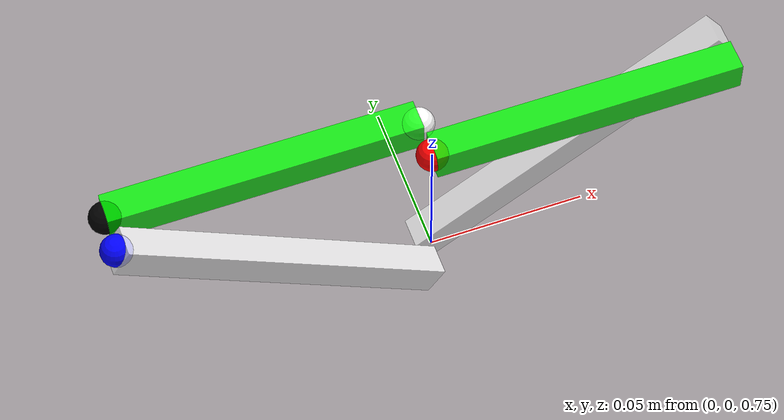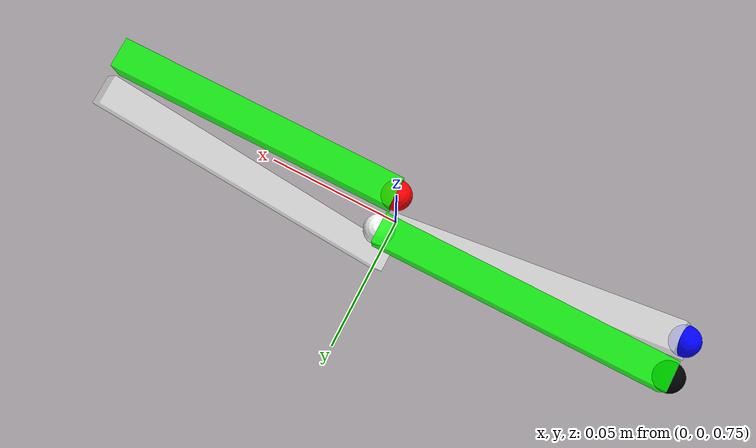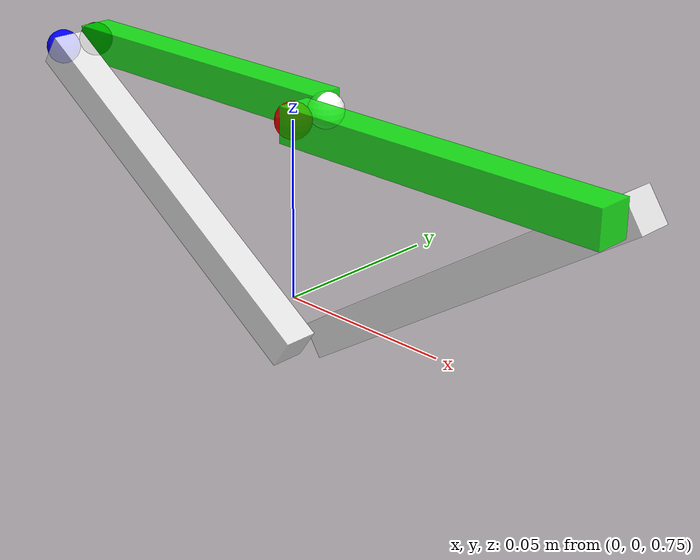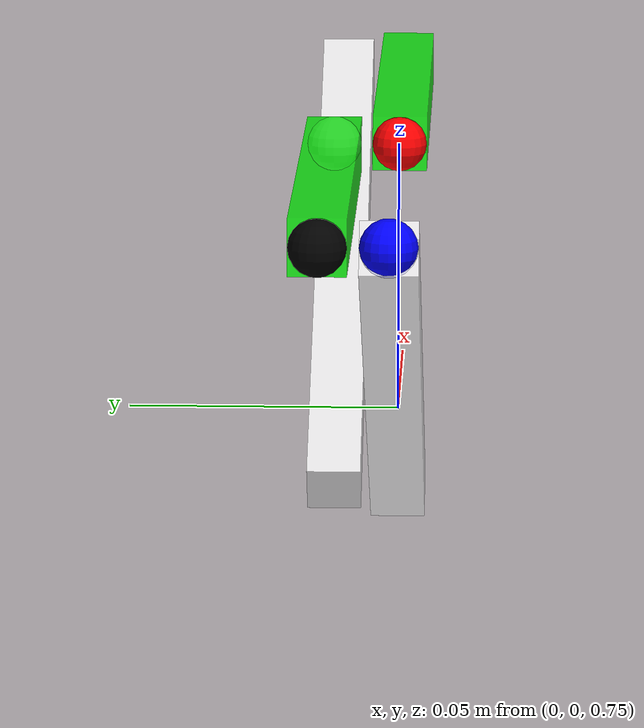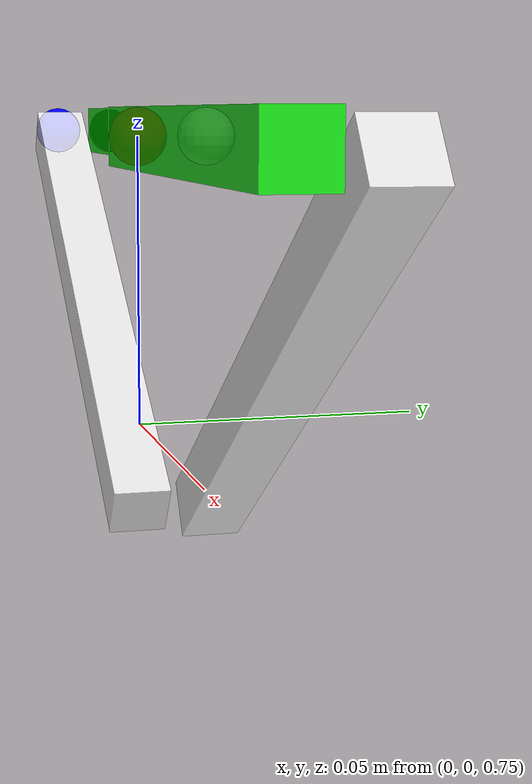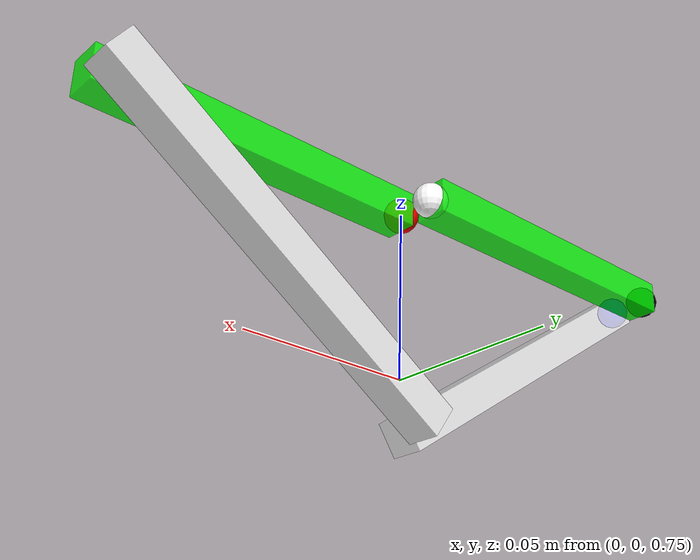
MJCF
<mujoco>
    <compiler angle="radian" meshdir="meshes" autolimits="true" />
    <option timestep="0.002" gravity="0 0 -9.81" integrator="implicitfast" density="1.225" viscosity="1.8e-5" />
    <asset>
        <mesh name="tetrahedron" vertex="0 0 0 1 0 0 0 1 0 0 0 1" />
        <texture type="skybox" builtin="gradient" rgb1=".1 .1 .1" rgb2=".9 .9 .9" width="512" height="512"/>
        <texture name="plane" type="2d" builtin="checker" rgb1=".1 .1 .1" rgb2=".9 .9 .9"
            width="512" height="512" mark="cross" markrgb=".8 .8 .8" />
        <material name="plane" reflectance="0.3" texture="plane" texrepeat="1 1" texuniform="true" />
    </asset>

    <worldbody>
        <geom type="plane" material="plane" pos="0 0 0" size="0 0 .25"/>
        <light directional="true" dir="0 0 -1" diffuse="1 1 1" specular=".5 .5 .5"/>

            <body name="l1" pos="0 0 .8">
                <geom type="box" size=".005" fromto="0 0 0 0.098 0 0" rgba="0 1 0 .8" pos="0 0 0"/>
                <joint type="hinge" name="joint_l1" pos="0 0 0" axis="0 1 0"/>
                <site type="sphere" name="l1" size=".005" pos="0 0 0" rgba="1 0 0 1"/>

                <body name="l2" pos="0.098 0.012 0">
                    <joint type="hinge" name="joint_l2" pos="0 0 0" axis="0 1 0"/>
                    <geom type="box" size="0.005" fromto="0 0 0 -0.098 0 -0.06573" rgba="1 1 1 .8" />

                    <body name="l3" pos="-0.098 -0.012 -0.06573">
                    <joint type="hinge" name="joint_l3" pos="0 0 0" axis="0 1 0"/>
                    <geom type="box" size="0.005" fromto="0 0 0 -0.098 0 0.06573" rgba="1 1 1 .8" />
                    <site type="sphere" name="l3" size=".005" pos="-0.098 0 0.06573" rgba="0 0 1 1"/>

                    </body>
                    </body>
            </body>

            <body name="l4" pos="0 0.012 0.8">
              <joint type="hinge" name="joint_l4" pos="0 0 0" axis="0 1 0"/>
              <joint type="hinge" name="joint_l4l" pos="-0.098 0 0" axis="0 1 0"/>
              <geom type="box" size="0.005" fromto="0 0 0 -0.098 0 0" rgba="0 1 0 .8" />
              <site type="sphere" name="l4r" size=".005" pos="0 0 0" rgba="1 1 1 1"/>
              <site type="sphere" name="l4l" size=".005" pos="-0.098 0 0" rgba="0 0 0 1"/>
            </body>

    </worldbody>

    <equality>
         <connect site1="l1" site2="l4r"/>
         <connect site1="l3" site2="l4l"/>
    </equality>

</mujoco>
